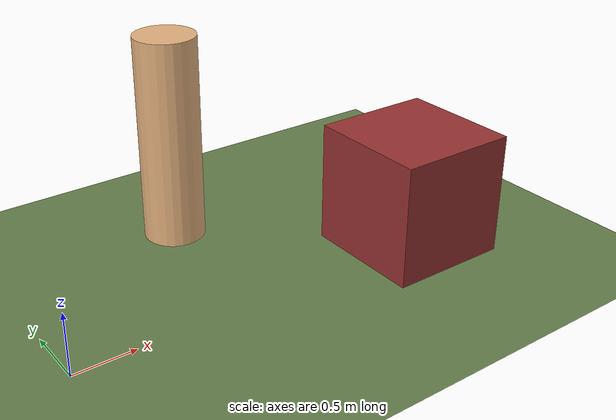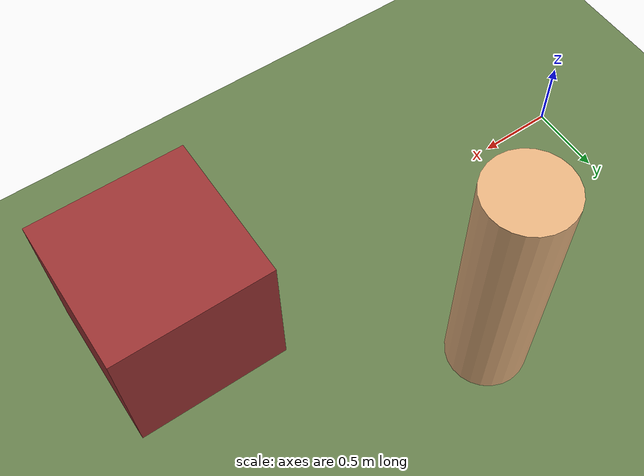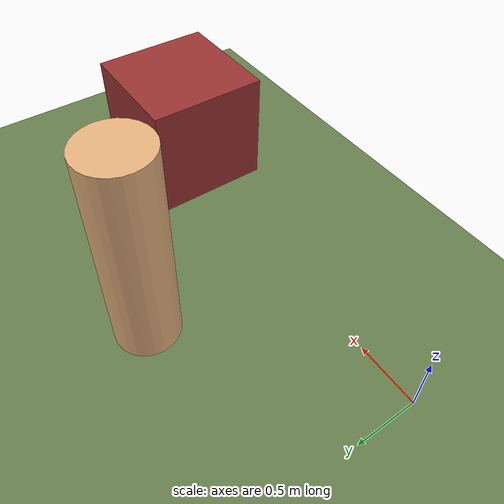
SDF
<?xml version="1.0"?>
<sdf version="1.8">
  <world name="stalion_world">
    <gravity>0 0 -9.8</gravity>
    <magnetic_field>6e-6 2.3e-5 -4.2e-5</magnetic_field>
    <atmosphere type="adiabatic"/>

    <physics name="default_physics" type="ode">
      <max_step_size>0.004</max_step_size>
      <real_time_factor>1.0</real_time_factor>
    </physics>

    <scene>
      <ambient>0.4 0.4 0.4 1</ambient>
      <background>0.7 0.8 0.9 1</background>
      <shadows>true</shadows>
    </scene>

    <!-- Ground -->
    <model name="ground_plane">
      <static>true</static>
      <link name="link">
        <collision name="collision">
          <geometry>
            <plane>
              <normal>0 0 1</normal>
              <size>50 50</size>
            </plane>
          </geometry>
        </collision>
        <visual name="visual">
          <geometry>
            <plane>
              <normal>0 0 1</normal>
              <size>50 50</size>
            </plane>
          </geometry>
          <material>
            <ambient>0.3 0.4 0.3 1</ambient>
            <diffuse>0.4 0.5 0.3 1</diffuse>
          </material>
        </visual>
      </link>
    </model>

    <!-- Obstacle box -->
    <model name="obstacle_1">
      <static>true</static>
      <pose>3 0 0.5 0 0 0</pose>
      <link name="link">
        <collision name="collision">
          <geometry><box><size>1 1 1</size></box></geometry>
        </collision>
        <visual name="visual">
          <geometry><box><size>1 1 1</size></box></geometry>
          <material>
            <ambient>0.6 0.2 0.2 1</ambient>
          </material>
        </visual>
      </link>
    </model>

    <!-- Human proxy (simple cylinder) -->
    <model name="human_proxy">
      <static>true</static>
      <pose>1.5 1.2 0.9 0 0 0</pose>
      <link name="link">
        <collision name="collision">
          <geometry><cylinder><radius>0.25</radius><length>1.7</length></cylinder></geometry>
        </collision>
        <visual name="visual">
          <geometry><cylinder><radius>0.25</radius><length>1.7</length></cylinder></geometry>
          <material>
            <ambient>0.9 0.7 0.5 1</ambient>
          </material>
        </visual>
      </link>
    </model>

  </world>
</sdf>
